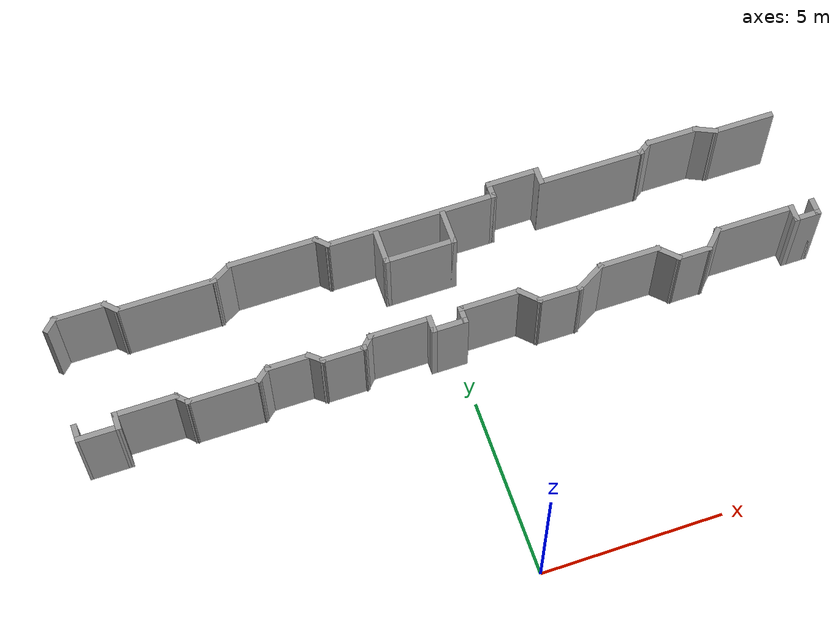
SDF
<?xml version='1.0'?>
<sdf version='1.6'>
  <model name='hall_with_obstacle'>
    <pose frame=''>-0.086277 8.03325 0 0 -0 0</pose>
    <link name='Wall_11'>
      <collision name='Wall_11_Collision'>
        <geometry>
          <box>
            <size>0.5 0.15 2.5</size>
          </box>
        </geometry>
        <pose frame=''>0 0 1.25 0 -0 0</pose>
      </collision>
      <visual name='Wall_11_Visual'>
        <pose frame=''>0 0 1.25 0 -0 0</pose>
        <geometry>
          <box>
            <size>0.5 0.15 2.5</size>
          </box>
        </geometry>
        <material>
          <script>
            <uri>file://media/materials/scripts/gazebo.material</uri>
            <name>Gazebo/Grey</name>
          </script>
          <ambient>1 1 1 1</ambient>
        </material>
      </visual>
      <pose frame=''>10.0655 -1.57322 0 0 0 -1.5708</pose>
    </link>
    <link name='Wall_12'>
      <collision name='Wall_12_Collision'>
        <geometry>
          <box>
            <size>0.75 0.15 2.5</size>
          </box>
        </geometry>
        <pose frame=''>0 0 1.25 0 -0 0</pose>
      </collision>
      <visual name='Wall_12_Visual'>
        <pose frame=''>0 0 1.25 0 -0 0</pose>
        <geometry>
          <box>
            <size>0.75 0.15 2.5</size>
          </box>
        </geometry>
        <material>
          <script>
            <uri>file://media/materials/scripts/gazebo.material</uri>
            <name>Gazebo/Grey</name>
          </script>
          <ambient>1 1 1 1</ambient>
        </material>
      </visual>
      <pose frame=''>9.76553 -1.74822 0 0 -0 3.14159</pose>
    </link>
    <link name='Wall_13'>
      <collision name='Wall_13_Collision'>
        <geometry>
          <box>
            <size>0.5 0.15 2.5</size>
          </box>
        </geometry>
        <pose frame=''>0 0 1.25 0 -0 0</pose>
      </collision>
      <visual name='Wall_13_Visual'>
        <pose frame=''>0 0 1.25 0 -0 0</pose>
        <geometry>
          <box>
            <size>0.5 0.15 2.5</size>
          </box>
        </geometry>
        <material>
          <script>
            <uri>file://media/materials/scripts/gazebo.material</uri>
            <name>Gazebo/Grey</name>
          </script>
          <ambient>1 1 1 1</ambient>
        </material>
      </visual>
      <pose frame=''>9.46553 -1.57322 0 0 -0 1.5708</pose>
    </link>
    <link name='Wall_14'>
      <collision name='Wall_14_Collision'>
        <geometry>
          <box>
            <size>2.25 0.15 2.5</size>
          </box>
        </geometry>
        <pose frame=''>0 0 1.25 0 -0 0</pose>
      </collision>
      <visual name='Wall_14_Visual'>
        <pose frame=''>0 0 1.25 0 -0 0</pose>
        <geometry>
          <box>
            <size>2.25 0.15 2.5</size>
          </box>
        </geometry>
        <material>
          <script>
            <uri>file://media/materials/scripts/gazebo.material</uri>
            <name>Gazebo/Grey</name>
          </script>
          <ambient>1 1 1 1</ambient>
        </material>
      </visual>
      <pose frame=''>8.41553 -1.39822 0 0 -0 3.14159</pose>
    </link>
    <link name='Wall_15'>
      <collision name='Wall_15_Collision'>
        <geometry>
          <box>
            <size>0.75 0.15 2.5</size>
          </box>
        </geometry>
        <pose frame=''>0 0 1.25 0 -0 0</pose>
      </collision>
      <visual name='Wall_15_Visual'>
        <pose frame=''>0 0 1.25 0 -0 0</pose>
        <geometry>
          <box>
            <size>0.75 0.15 2.5</size>
          </box>
        </geometry>
        <material>
          <script>
            <uri>file://media/materials/scripts/gazebo.material</uri>
            <name>Gazebo/Grey</name>
          </script>
          <ambient>1 1 1 1</ambient>
        </material>
      </visual>
      <pose frame=''>7.1534 -1.61035 0 0 0 -2.35619</pose>
    </link>
    <link name='Wall_16'>
      <collision name='Wall_16_Collision'>
        <geometry>
          <box>
            <size>1 0.15 2.5</size>
          </box>
        </geometry>
        <pose frame=''>0 0 1.25 0 -0 0</pose>
      </collision>
      <visual name='Wall_16_Visual'>
        <pose frame=''>0 0 1.25 0 -0 0</pose>
        <geometry>
          <box>
            <size>1 0.15 2.5</size>
          </box>
        </geometry>
        <material>
          <script>
            <uri>file://media/materials/scripts/gazebo.material</uri>
            <name>Gazebo/Grey</name>
          </script>
          <ambient>1 1 1 1</ambient>
        </material>
      </visual>
      <pose frame=''>6.51627 -1.82249 0 0 -0 3.14159</pose>
    </link>
    <link name='Wall_17'>
      <collision name='Wall_17_Collision'>
        <geometry>
          <box>
            <size>0.75 0.15 2.5</size>
          </box>
        </geometry>
        <pose frame=''>0 0 1.25 0 -0 0</pose>
      </collision>
      <visual name='Wall_17_Visual'>
        <pose frame=''>0 0 1.25 0 -0 0</pose>
        <geometry>
          <box>
            <size>0.75 0.15 2.5</size>
          </box>
        </geometry>
        <material>
          <script>
            <uri>file://media/materials/scripts/gazebo.material</uri>
            <name>Gazebo/Grey</name>
          </script>
          <ambient>1 1 1 1</ambient>
        </material>
      </visual>
      <pose frame=''>5.87914 -1.61035 0 0 -0 2.35619</pose>
    </link>
    <link name='Wall_18'>
      <collision name='Wall_18_Collision'>
        <geometry>
          <box>
            <size>1.75 0.15 2.5</size>
          </box>
        </geometry>
        <pose frame=''>0 0 1.25 0 -0 0</pose>
      </collision>
      <visual name='Wall_18_Visual'>
        <pose frame=''>0 0 1.25 0 -0 0</pose>
        <geometry>
          <box>
            <size>1.75 0.15 2.5</size>
          </box>
        </geometry>
        <material>
          <script>
            <uri>file://media/materials/scripts/gazebo.material</uri>
            <name>Gazebo/Grey</name>
          </script>
          <ambient>1 1 1 1</ambient>
        </material>
      </visual>
      <pose frame=''>4.867 -1.39822 0 0 -0 3.14159</pose>
    </link>
    <link name='Wall_19'>
      <collision name='Wall_19_Collision'>
        <geometry>
          <box>
            <size>1 0.15 2.5</size>
          </box>
        </geometry>
        <pose frame=''>0 0 1.25 0 -0 0</pose>
      </collision>
      <visual name='Wall_19_Visual'>
        <pose frame=''>0 0 1.25 0 -0 0</pose>
        <geometry>
          <box>
            <size>1 0.15 2.5</size>
          </box>
        </geometry>
        <material>
          <script>
            <uri>file://media/materials/scripts/gazebo.material</uri>
            <name>Gazebo/Grey</name>
          </script>
          <ambient>1 1 1 1</ambient>
        </material>
      </visual>
      <pose frame=''>3.69894 -1.61072 0 0 0 -2.61799</pose>
    </link>
    <link name='Wall_20'>
      <collision name='Wall_20_Collision'>
        <geometry>
          <box>
            <size>1.25 0.15 2.5</size>
          </box>
        </geometry>
        <pose frame=''>0 0 1.25 0 -0 0</pose>
      </collision>
      <visual name='Wall_20_Visual'>
        <pose frame=''>0 0 1.25 0 -0 0</pose>
        <geometry>
          <box>
            <size>1.25 0.15 2.5</size>
          </box>
        </geometry>
        <material>
          <script>
            <uri>file://media/materials/scripts/gazebo.material</uri>
            <name>Gazebo/Grey</name>
          </script>
          <ambient>1 1 1 1</ambient>
        </material>
      </visual>
      <pose frame=''>2.78088 -1.82322 0 0 -0 3.14159</pose>
    </link>
    <link name='Wall_21'>
      <collision name='Wall_21_Collision'>
        <geometry>
          <box>
            <size>0.75 0.15 2.5</size>
          </box>
        </geometry>
        <pose frame=''>0 0 1.25 0 -0 0</pose>
      </collision>
      <visual name='Wall_21_Visual'>
        <pose frame=''>0 0 1.25 0 -0 0</pose>
        <geometry>
          <box>
            <size>0.75 0.15 2.5</size>
          </box>
        </geometry>
        <material>
          <script>
            <uri>file://media/materials/scripts/gazebo.material</uri>
            <name>Gazebo/Grey</name>
          </script>
          <ambient>1 1 1 1</ambient>
        </material>
      </visual>
      <pose frame=''>2.01875 -1.61109 0 0 -0 2.35619</pose>
    </link>
    <link name='Wall_22'>
      <collision name='Wall_22_Collision'>
        <geometry>
          <box>
            <size>1.75 0.15 2.5</size>
          </box>
        </geometry>
        <pose frame=''>0 0 1.25 0 -0 0</pose>
      </collision>
      <visual name='Wall_22_Visual'>
        <pose frame=''>0 0 1.25 0 -0 0</pose>
        <geometry>
          <box>
            <size>1.75 0.15 2.5</size>
          </box>
        </geometry>
        <material>
          <script>
            <uri>file://media/materials/scripts/gazebo.material</uri>
            <name>Gazebo/Grey</name>
          </script>
          <ambient>1 1 1 1</ambient>
        </material>
      </visual>
      <pose frame=''>1.00662 -1.39896 0 0 -0 3.14159</pose>
    </link>
    <link name='Wall_23'>
      <collision name='Wall_23_Collision'>
        <geometry>
          <box>
            <size>0.5 0.15 2.5</size>
          </box>
        </geometry>
        <pose frame=''>0 0 1.25 0 -0 0</pose>
      </collision>
      <visual name='Wall_23_Visual'>
        <pose frame=''>0 0 1.25 0 -0 0</pose>
        <geometry>
          <box>
            <size>0.5 0.15 2.5</size>
          </box>
        </geometry>
        <material>
          <script>
            <uri>file://media/materials/scripts/gazebo.material</uri>
            <name>Gazebo/Grey</name>
          </script>
          <ambient>1 1 1 1</ambient>
        </material>
      </visual>
      <pose frame=''>0.206619 -1.57396 0 0 0 -1.5708</pose>
    </link>
    <link name='Wall_24'>
      <collision name='Wall_24_Collision'>
        <geometry>
          <box>
            <size>1 0.15 2.5</size>
          </box>
        </geometry>
        <pose frame=''>0 0 1.25 0 -0 0</pose>
      </collision>
      <visual name='Wall_24_Visual'>
        <pose frame=''>0 0 1.25 0 -0 0</pose>
        <geometry>
          <box>
            <size>1 0.15 2.5</size>
          </box>
        </geometry>
        <material>
          <script>
            <uri>file://media/materials/scripts/gazebo.material</uri>
            <name>Gazebo/Grey</name>
          </script>
          <ambient>1 1 1 1</ambient>
        </material>
      </visual>
      <pose frame=''>-0.218381 -1.74896 0 0 -0 3.14159</pose>
    </link>
    <link name='Wall_25'>
      <collision name='Wall_25_Collision'>
        <geometry>
          <box>
            <size>0.5 0.15 2.5</size>
          </box>
        </geometry>
        <pose frame=''>0 0 1.25 0 -0 0</pose>
      </collision>
      <visual name='Wall_25_Visual'>
        <pose frame=''>0 0 1.25 0 -0 0</pose>
        <geometry>
          <box>
            <size>0.5 0.15 2.5</size>
          </box>
        </geometry>
        <material>
          <script>
            <uri>file://media/materials/scripts/gazebo.material</uri>
            <name>Gazebo/Grey</name>
          </script>
          <ambient>1 1 1 1</ambient>
        </material>
      </visual>
      <pose frame=''>-0.643381 -1.57396 0 0 -0 1.5708</pose>
    </link>
    <link name='Wall_26'>
      <collision name='Wall_26_Collision'>
        <geometry>
          <box>
            <size>1.75 0.15 2.5</size>
          </box>
        </geometry>
        <pose frame=''>0 0 1.25 0 -0 0</pose>
      </collision>
      <visual name='Wall_26_Visual'>
        <pose frame=''>0 0 1.25 0 -0 0</pose>
        <geometry>
          <box>
            <size>1.75 0.15 2.5</size>
          </box>
        </geometry>
        <material>
          <script>
            <uri>file://media/materials/scripts/gazebo.material</uri>
            <name>Gazebo/Grey</name>
          </script>
          <ambient>1 1 1 1</ambient>
        </material>
      </visual>
      <pose frame=''>-1.44338 -1.39896 0 0 -0 3.14159</pose>
    </link>
    <link name='Wall_27'>
      <collision name='Wall_27_Collision'>
        <geometry>
          <box>
            <size>0.5 0.15 2.5</size>
          </box>
        </geometry>
        <pose frame=''>0 0 1.25 0 -0 0</pose>
      </collision>
      <visual name='Wall_27_Visual'>
        <pose frame=''>0 0 1.25 0 -0 0</pose>
        <geometry>
          <box>
            <size>0.5 0.15 2.5</size>
          </box>
        </geometry>
        <material>
          <script>
            <uri>file://media/materials/scripts/gazebo.material</uri>
            <name>Gazebo/Grey</name>
          </script>
          <ambient>1 1 1 1</ambient>
        </material>
      </visual>
      <pose frame=''>-2.36713 -1.5227 0 0 0 -2.35619</pose>
    </link>
    <link name='Wall_28'>
      <collision name='Wall_28_Collision'>
        <geometry>
          <box>
            <size>1.25 0.15 2.5</size>
          </box>
        </geometry>
        <pose frame=''>0 0 1.25 0 -0 0</pose>
      </collision>
      <visual name='Wall_28_Visual'>
        <pose frame=''>0 0 1.25 0 -0 0</pose>
        <geometry>
          <box>
            <size>1.25 0.15 2.5</size>
          </box>
        </geometry>
        <material>
          <script>
            <uri>file://media/materials/scripts/gazebo.material</uri>
            <name>Gazebo/Grey</name>
          </script>
          <ambient>1 1 1 1</ambient>
        </material>
      </visual>
      <pose frame=''>-3.04087 -1.64645 0 0 -0 3.14159</pose>
    </link>
    <link name='Wall_29'>
      <collision name='Wall_29_Collision'>
        <geometry>
          <box>
            <size>0.543571 0.15 2.5</size>
          </box>
        </geometry>
        <pose frame=''>0 0 1.25 0 -0 0</pose>
      </collision>
      <visual name='Wall_29_Visual'>
        <pose frame=''>0 0 1.25 0 -0 0</pose>
        <geometry>
          <box>
            <size>0.543571 0.15 2.5</size>
          </box>
        </geometry>
        <material>
          <script>
            <uri>file://media/materials/scripts/gazebo.material</uri>
            <name>Gazebo/Grey</name>
          </script>
          <ambient>1 1 1 1</ambient>
        </material>
      </visual>
      <pose frame=''>-3.74242 -1.52092 0 0 -0 2.44987</pose>
    </link>
    <link name='Wall_30'>
      <collision name='Wall_30_Collision'>
        <geometry>
          <box>
            <size>1.25 0.15 2.5</size>
          </box>
        </geometry>
        <pose frame=''>0 0 1.25 0 -0 0</pose>
      </collision>
      <visual name='Wall_30_Visual'>
        <pose frame=''>0 0 1.25 0 -0 0</pose>
        <geometry>
          <box>
            <size>1.25 0.15 2.5</size>
          </box>
        </geometry>
        <material>
          <script>
            <uri>file://media/materials/scripts/gazebo.material</uri>
            <name>Gazebo/Grey</name>
          </script>
          <ambient>1 1 1 1</ambient>
        </material>
      </visual>
      <pose frame=''>-4.44398 -1.41061 0 0 -0 3.14159</pose>
    </link>
    <link name='Wall_31'>
      <collision name='Wall_31_Collision'>
        <geometry>
          <box>
            <size>0.543571 0.15 2.5</size>
          </box>
        </geometry>
        <pose frame=''>0 0 1.25 0 -0 0</pose>
      </collision>
      <visual name='Wall_31_Visual'>
        <pose frame=''>0 0 1.25 0 -0 0</pose>
        <geometry>
          <box>
            <size>0.543571 0.15 2.5</size>
          </box>
        </geometry>
        <material>
          <script>
            <uri>file://media/materials/scripts/gazebo.material</uri>
            <name>Gazebo/Grey</name>
          </script>
          <ambient>1 1 1 1</ambient>
        </material>
      </visual>
      <pose frame=''>-5.14553 -1.52092 0 0 0 -2.44987</pose>
    </link>
    <link name='Wall_32'>
      <collision name='Wall_32_Collision'>
        <geometry>
          <box>
            <size>2 0.15 2.5</size>
          </box>
        </geometry>
        <pose frame=''>0 0 1.25 0 -0 0</pose>
      </collision>
      <visual name='Wall_32_Visual'>
        <pose frame=''>0 0 1.25 0 -0 0</pose>
        <geometry>
          <box>
            <size>2 0.15 2.5</size>
          </box>
        </geometry>
        <material>
          <script>
            <uri>file://media/materials/scripts/gazebo.material</uri>
            <name>Gazebo/Grey</name>
          </script>
          <ambient>1 1 1 1</ambient>
        </material>
      </visual>
      <pose frame=''>-6.22209 -1.64645 0 0 -0 3.14159</pose>
    </link>
    <link name='Wall_33'>
      <collision name='Wall_33_Collision'>
        <geometry>
          <box>
            <size>0.5 0.15 2.5</size>
          </box>
        </geometry>
        <pose frame=''>0 0 1.25 0 -0 0</pose>
      </collision>
      <visual name='Wall_33_Visual'>
        <pose frame=''>0 0 1.25 0 -0 0</pose>
        <geometry>
          <box>
            <size>0.5 0.15 2.5</size>
          </box>
        </geometry>
        <material>
          <script>
            <uri>file://media/materials/scripts/gazebo.material</uri>
            <name>Gazebo/Grey</name>
          </script>
          <ambient>1 1 1 1</ambient>
        </material>
      </visual>
      <pose frame=''>-7.27083 -1.5227 0 0 -0 2.35619</pose>
    </link>
    <link name='Wall_34'>
      <collision name='Wall_34_Collision'>
        <geometry>
          <box>
            <size>1.75 0.15 2.5</size>
          </box>
        </geometry>
        <pose frame=''>0 0 1.25 0 -0 0</pose>
      </collision>
      <visual name='Wall_34_Visual'>
        <pose frame=''>0 0 1.25 0 -0 0</pose>
        <geometry>
          <box>
            <size>1.75 0.15 2.5</size>
          </box>
        </geometry>
        <material>
          <script>
            <uri>file://media/materials/scripts/gazebo.material</uri>
            <name>Gazebo/Grey</name>
          </script>
          <ambient>1 1 1 1</ambient>
        </material>
      </visual>
      <pose frame=''>-8.19457 -1.39896 0 0 -0 3.14159</pose>
    </link>
    <link name='Wall_35'>
      <collision name='Wall_35_Collision'>
        <geometry>
          <box>
            <size>0.5 0.15 2.5</size>
          </box>
        </geometry>
        <pose frame=''>0 0 1.25 0 -0 0</pose>
      </collision>
      <visual name='Wall_35_Visual'>
        <pose frame=''>0 0 1.25 0 -0 0</pose>
        <geometry>
          <box>
            <size>0.5 0.15 2.5</size>
          </box>
        </geometry>
        <material>
          <script>
            <uri>file://media/materials/scripts/gazebo.material</uri>
            <name>Gazebo/Grey</name>
          </script>
          <ambient>1 1 1 1</ambient>
        </material>
      </visual>
      <pose frame=''>-8.99457 -1.57396 0 0 0 -1.5708</pose>
    </link>
    <link name='Wall_36'>
      <collision name='Wall_36_Collision'>
        <geometry>
          <box>
            <size>1.18989 0.15 2.5</size>
          </box>
        </geometry>
        <pose frame=''>0 0 1.25 0 -0 0</pose>
      </collision>
      <visual name='Wall_36_Visual'>
        <pose frame=''>0 0 1.25 0 -0 0</pose>
        <geometry>
          <box>
            <size>1.18989 0.15 2.5</size>
          </box>
        </geometry>
        <material>
          <script>
            <uri>file://media/materials/scripts/gazebo.material</uri>
            <name>Gazebo/Grey</name>
          </script>
          <ambient>1 1 1 1</ambient>
        </material>
      </visual>
      <pose frame=''>-9.51452 -1.74859 0 0 -0 3.14088</pose>
    </link>
    <link name='Wall_37'>
      <collision name='Wall_37_Collision'>
        <geometry>
          <box>
            <size>0.5 0.15 2.5</size>
          </box>
        </geometry>
        <pose frame=''>0 0 1.25 0 -0 0</pose>
      </collision>
      <visual name='Wall_37_Visual'>
        <pose frame=''>0 0 1.25 0 -0 0</pose>
        <geometry>
          <box>
            <size>0.5 0.15 2.5</size>
          </box>
        </geometry>
        <material>
          <script>
            <uri>file://media/materials/scripts/gazebo.material</uri>
            <name>Gazebo/Grey</name>
          </script>
          <ambient>1 1 1 1</ambient>
        </material>
      </visual>
      <pose frame=''>-10.0345 -1.57322 0 0 -0 1.5708</pose>
    </link>
    <link name='Wall_40'>
      <collision name='Wall_40_Collision'>
        <geometry>
          <box>
            <size>0.5 0.15 2.5</size>
          </box>
        </geometry>
        <pose frame=''>0 0 1.25 0 -0 0</pose>
      </collision>
      <visual name='Wall_40_Visual'>
        <pose frame=''>0 0 1.25 0 -0 0</pose>
        <geometry>
          <box>
            <size>0.5 0.15 2.5</size>
          </box>
        </geometry>
        <material>
          <script>
            <uri>file://media/materials/scripts/gazebo.material</uri>
            <name>Gazebo/Grey</name>
          </script>
          <ambient>1 1 1 1</ambient>
        </material>
      </visual>
      <pose frame=''>-9.91072 1.57552 0 0 -0 0.785398</pose>
    </link>
    <link name='Wall_41'>
      <collision name='Wall_41_Collision'>
        <geometry>
          <box>
            <size>1.5 0.15 2.5</size>
          </box>
        </geometry>
        <pose frame=''>0 0 1.25 0 -0 0</pose>
      </collision>
      <visual name='Wall_41_Visual'>
        <pose frame=''>0 0 1.25 0 -0 0</pose>
        <geometry>
          <box>
            <size>1.5 0.15 2.5</size>
          </box>
        </geometry>
        <material>
          <script>
            <uri>file://media/materials/scripts/gazebo.material</uri>
            <name>Gazebo/Grey</name>
          </script>
          <ambient>1 1 1 1</ambient>
        </material>
      </visual>
      <pose frame=''>-9.11198 1.69926 0 0 -0 0</pose>
    </link>
    <link name='Wall_42'>
      <collision name='Wall_42_Collision'>
        <geometry>
          <box>
            <size>0.5 0.15 2.5</size>
          </box>
        </geometry>
        <pose frame=''>0 0 1.25 0 -0 0</pose>
      </collision>
      <visual name='Wall_42_Visual'>
        <pose frame=''>0 0 1.25 0 -0 0</pose>
        <geometry>
          <box>
            <size>0.5 0.15 2.5</size>
          </box>
        </geometry>
        <material>
          <script>
            <uri>file://media/materials/scripts/gazebo.material</uri>
            <name>Gazebo/Grey</name>
          </script>
          <ambient>1 1 1 1</ambient>
        </material>
      </visual>
      <pose frame=''>-8.31324 1.57552 0 0 0 -0.785398</pose>
    </link>
    <link name='Wall_43'>
      <collision name='Wall_43_Collision'>
        <geometry>
          <box>
            <size>2.75 0.15 2.5</size>
          </box>
        </geometry>
        <pose frame=''>0 0 1.25 0 -0 0</pose>
      </collision>
      <visual name='Wall_43_Visual'>
        <pose frame=''>0 0 1.25 0 -0 0</pose>
        <geometry>
          <box>
            <size>2.75 0.15 2.5</size>
          </box>
        </geometry>
        <material>
          <script>
            <uri>file://media/materials/scripts/gazebo.material</uri>
            <name>Gazebo/Grey</name>
          </script>
          <ambient>1 1 1 1</ambient>
        </material>
      </visual>
      <pose frame=''>-6.88949 1.45178 0 0 -0 0</pose>
    </link>
    <link name='Wall_44'>
      <collision name='Wall_44_Collision'>
        <geometry>
          <box>
            <size>0.75 0.15 2.5</size>
          </box>
        </geometry>
        <pose frame=''>0 0 1.25 0 -0 0</pose>
      </collision>
      <visual name='Wall_44_Visual'>
        <pose frame=''>0 0 1.25 0 -0 0</pose>
        <geometry>
          <box>
            <size>0.75 0.15 2.5</size>
          </box>
        </geometry>
        <material>
          <script>
            <uri>file://media/materials/scripts/gazebo.material</uri>
            <name>Gazebo/Grey</name>
          </script>
          <ambient>1 1 1 1</ambient>
        </material>
      </visual>
      <pose frame=''>-5.32968 1.60178 0 0 -0 0.523599</pose>
    </link>
    <link name='Wall_45'>
      <collision name='Wall_45_Collision'>
        <geometry>
          <box>
            <size>2.5 0.15 2.5</size>
          </box>
        </geometry>
        <pose frame=''>0 0 1.25 0 -0 0</pose>
      </collision>
      <visual name='Wall_45_Visual'>
        <pose frame=''>0 0 1.25 0 -0 0</pose>
        <geometry>
          <box>
            <size>2.5 0.15 2.5</size>
          </box>
        </geometry>
        <material>
          <script>
            <uri>file://media/materials/scripts/gazebo.material</uri>
            <name>Gazebo/Grey</name>
          </script>
          <ambient>1 1 1 1</ambient>
        </material>
      </visual>
      <pose frame=''>-3.89488 1.75178 0 0 -0 0</pose>
    </link>
    <link name='Wall_46'>
      <collision name='Wall_46_Collision'>
        <geometry>
          <box>
            <size>0.5 0.15 2.5</size>
          </box>
        </geometry>
        <pose frame=''>0 0 1.25 0 -0 0</pose>
      </collision>
      <visual name='Wall_46_Visual'>
        <pose frame=''>0 0 1.25 0 -0 0</pose>
        <geometry>
          <box>
            <size>0.5 0.15 2.5</size>
          </box>
        </geometry>
        <material>
          <script>
            <uri>file://media/materials/scripts/gazebo.material</uri>
            <name>Gazebo/Grey</name>
          </script>
          <ambient>1 1 1 1</ambient>
        </material>
      </visual>
      <pose frame=''>-2.59613 1.62803 0 0 0 -0.785398</pose>
    </link>
    <link name='Wall_47'>
      <collision name='Wall_47_Collision'>
        <geometry>
          <box>
            <size>4.75 0.15 2.5</size>
          </box>
        </geometry>
        <pose frame=''>0 0 1.25 0 -0 0</pose>
      </collision>
      <visual name='Wall_47_Visual'>
        <pose frame=''>0 0 1.25 0 -0 0</pose>
        <geometry>
          <box>
            <size>4.75 0.15 2.5</size>
          </box>
        </geometry>
        <material>
          <script>
            <uri>file://media/materials/scripts/gazebo.material</uri>
            <name>Gazebo/Grey</name>
          </script>
          <ambient>1 1 1 1</ambient>
        </material>
      </visual>
      <pose frame=''>-0.17239 1.50429 0 0 -0 0</pose>
    </link>
    <link name='Wall_48'>
      <collision name='Wall_48_Collision'>
        <geometry>
          <box>
            <size>0.5 0.15 2.5</size>
          </box>
        </geometry>
        <pose frame=''>0 0 1.25 0 -0 0</pose>
      </collision>
      <visual name='Wall_48_Visual'>
        <pose frame=''>0 0 1.25 0 -0 0</pose>
        <geometry>
          <box>
            <size>0.5 0.15 2.5</size>
          </box>
        </geometry>
        <material>
          <script>
            <uri>file://media/materials/scripts/gazebo.material</uri>
            <name>Gazebo/Grey</name>
          </script>
          <ambient>1 1 1 1</ambient>
        </material>
      </visual>
      <pose frame=''>2.12761 1.67929 0 0 -0 1.5708</pose>
    </link>
    <link name='Wall_49'>
      <collision name='Wall_49_Collision'>
        <geometry>
          <box>
            <size>1.5 0.15 2.5</size>
          </box>
        </geometry>
        <pose frame=''>0 0 1.25 0 -0 0</pose>
      </collision>
      <visual name='Wall_49_Visual'>
        <pose frame=''>0 0 1.25 0 -0 0</pose>
        <geometry>
          <box>
            <size>1.5 0.15 2.5</size>
          </box>
        </geometry>
        <material>
          <script>
            <uri>file://media/materials/scripts/gazebo.material</uri>
            <name>Gazebo/Grey</name>
          </script>
          <ambient>1 1 1 1</ambient>
        </material>
      </visual>
      <pose frame=''>2.80261 1.85429 0 0 -0 0</pose>
    </link>
    <link name='Wall_50'>
      <collision name='Wall_50_Collision'>
        <geometry>
          <box>
            <size>0.5115 0.15 2.5</size>
          </box>
        </geometry>
        <pose frame=''>0 0 1.25 0 -0 0</pose>
      </collision>
      <visual name='Wall_50_Visual'>
        <pose frame=''>0 0 1.25 0 -0 0</pose>
        <geometry>
          <box>
            <size>0.5115 0.15 2.5</size>
          </box>
        </geometry>
        <material>
          <script>
            <uri>file://media/materials/scripts/gazebo.material</uri>
            <name>Gazebo/Grey</name>
          </script>
          <ambient>1 1 1 1</ambient>
        </material>
      </visual>
      <pose frame=''>3.47761 1.67354 0 0 0 -1.5708</pose>
    </link>
    <link name='Wall_51'>
      <collision name='Wall_51_Collision'>
        <geometry>
          <box>
            <size>3 0.15 2.5</size>
          </box>
        </geometry>
        <pose frame=''>0 0 1.25 0 -0 0</pose>
      </collision>
      <visual name='Wall_51_Visual'>
        <pose frame=''>0 0 1.25 0 -0 0</pose>
        <geometry>
          <box>
            <size>3 0.15 2.5</size>
          </box>
        </geometry>
        <material>
          <script>
            <uri>file://media/materials/scripts/gazebo.material</uri>
            <name>Gazebo/Grey</name>
          </script>
          <ambient>1 1 1 1</ambient>
        </material>
      </visual>
      <pose frame=''>4.90261 1.48129 0 0 -0 0</pose>
    </link>
    <link name='Wall_53'>
      <collision name='Wall_53_Collision'>
        <geometry>
          <box>
            <size>0.505889 0.15 2.5</size>
          </box>
        </geometry>
        <pose frame=''>0 0 1.25 0 -0 0</pose>
      </collision>
      <visual name='Wall_53_Visual'>
        <pose frame=''>0 0 1.25 0 -0 0</pose>
        <geometry>
          <box>
            <size>0.505889 0.15 2.5</size>
          </box>
        </geometry>
        <material>
          <script>
            <uri>file://media/materials/scripts/gazebo.material</uri>
            <name>Gazebo/Grey</name>
          </script>
          <ambient>1 1 1 1</ambient>
        </material>
      </visual>
      <pose frame=''>6.47917 1.58604 0 0 -0 0.551587</pose>
    </link>
    <link name='Wall_54'>
      <collision name='Wall_54_Collision'>
        <geometry>
          <box>
            <size>1.5 0.15 2.5</size>
          </box>
        </geometry>
        <pose frame=''>0 0 1.25 0 -0 0</pose>
      </collision>
      <visual name='Wall_54_Visual'>
        <pose frame=''>0 0 1.25 0 -0 0</pose>
        <geometry>
          <box>
            <size>1.5 0.15 2.5</size>
          </box>
        </geometry>
        <material>
          <script>
            <uri>file://media/materials/scripts/gazebo.material</uri>
            <name>Gazebo/Grey</name>
          </script>
          <ambient>1 1 1 1</ambient>
        </material>
      </visual>
      <pose frame=''>7.30572 1.67929 0 0 -0 0</pose>
    </link>
    <link name='Wall_55'>
      <collision name='Wall_55_Collision'>
        <geometry>
          <box>
            <size>0.685543 0.15 2.5</size>
          </box>
        </geometry>
        <pose frame=''>0 0 1.25 0 -0 0</pose>
      </collision>
      <visual name='Wall_55_Visual'>
        <pose frame=''>0 0 1.25 0 -0 0</pose>
        <geometry>
          <box>
            <size>0.685543 0.15 2.5</size>
          </box>
        </geometry>
        <material>
          <script>
            <uri>file://media/materials/scripts/gazebo.material</uri>
            <name>Gazebo/Grey</name>
          </script>
          <ambient>1 1 1 1</ambient>
        </material>
      </visual>
      <pose frame=''>8.22313 1.56553 0 0 0 -0.43877</pose>
    </link>
    <link name='Wall_56'>
      <collision name='Wall_56_Collision'>
        <geometry>
          <box>
            <size>1.75 0.15 2.5</size>
          </box>
        </geometry>
        <pose frame=''>0 0 1.25 0 -0 0</pose>
      </collision>
      <visual name='Wall_56_Visual'>
        <pose frame=''>0 0 1.25 0 -0 0</pose>
        <geometry>
          <box>
            <size>1.75 0.15 2.5</size>
          </box>
        </geometry>
        <material>
          <script>
            <uri>file://media/materials/scripts/gazebo.material</uri>
            <name>Gazebo/Grey</name>
          </script>
          <ambient>1 1 1 1</ambient>
        </material>
      </visual>
      <pose frame=''>9.26553 1.45178 0 0 -0 0</pose>
    </link>
    <link name='Wall_7'>
      <collision name='Wall_7_Collision'>
        <geometry>
          <box>
            <size>1 0.15 2.5</size>
          </box>
        </geometry>
        <pose frame=''>0 0 1.25 0 -0 0</pose>
      </collision>
      <visual name='Wall_7_Visual'>
        <pose frame=''>0 0 1.25 0 -0 0</pose>
        <geometry>
          <box>
            <size>1 0.15 2.5</size>
          </box>
        </geometry>
        <material>
          <script>
            <uri>file://media/materials/scripts/gazebo.material</uri>
            <name>Gazebo/Grey</name>
          </script>
          <ambient>1 1 1 1</ambient>
        </material>
      </visual>
      <pose frame=''>-1.1611 0.981333 0 0 0 -1.5708</pose>
    </link>
    <link name='Wall_8'>
      <collision name='Wall_8_Collision'>
        <geometry>
          <box>
            <size>2 0.15 2.5</size>
          </box>
        </geometry>
        <pose frame=''>0 0 1.25 0 -0 0</pose>
      </collision>
      <visual name='Wall_8_Visual'>
        <pose frame=''>0 0 1.25 0 -0 0</pose>
        <geometry>
          <box>
            <size>2 0.15 2.5</size>
          </box>
        </geometry>
        <material>
          <script>
            <uri>file://media/materials/scripts/gazebo.material</uri>
            <name>Gazebo/Grey</name>
          </script>
          <ambient>1 1 1 1</ambient>
        </material>
      </visual>
      <pose frame=''>-0.236103 0.556333 0 0 -0 0</pose>
    </link>
    <link name='Wall_9'>
      <collision name='Wall_9_Collision'>
        <geometry>
          <box>
            <size>1 0.15 2.5</size>
          </box>
        </geometry>
        <pose frame=''>0 0 1.25 0 -0 0</pose>
      </collision>
      <visual name='Wall_9_Visual'>
        <pose frame=''>0 0 1.25 0 -0 0</pose>
        <geometry>
          <box>
            <size>1 0.15 2.5</size>
          </box>
        </geometry>
        <material>
          <script>
            <uri>file://media/materials/scripts/gazebo.material</uri>
            <name>Gazebo/Grey</name>
          </script>
          <ambient>1 1 1 1</ambient>
        </material>
      </visual>
      <pose frame=''>0.688897 0.981333 0 0 -0 1.5708</pose>
    </link>
    <static>1</static>
  </model>
</sdf>
